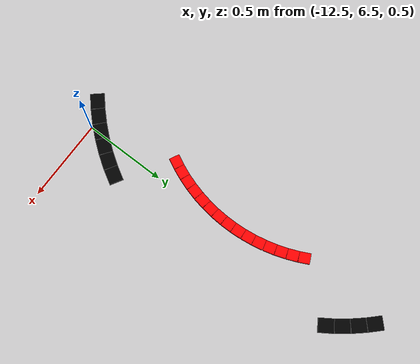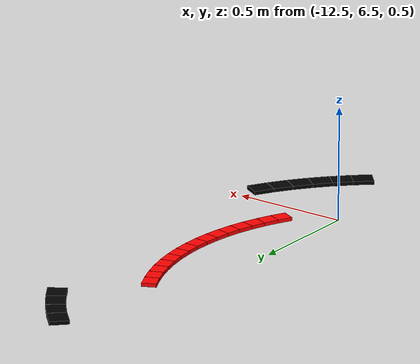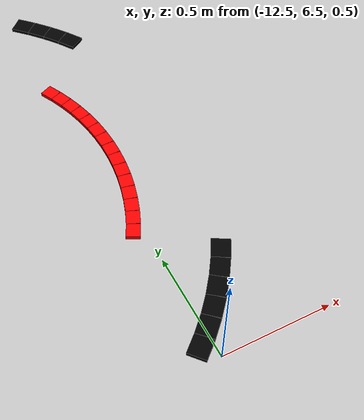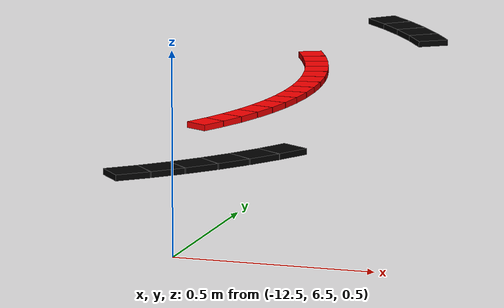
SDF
<sdf version="1.9">
 <world name="indoor_mission">
  <model name="start_vertiport_black_outer_ring_9">
   <static>true</static>
   <pose>-12.377516023391564 8.250019814576463 0.701 0 0 2.1598449493429825</pose>
   <link name="link">
    <visual name="visual">
     <geometry><box><size>0.08835729338221293 0.08 0.015</size></box></geometry>
     <material><ambient>0 0 0 1</ambient><diffuse>0 0 0 1</diffuse></material>
    </visual>
   </link>
  </model>
  <model name="start_vertiport_black_outer_ring_10">
   <static>true</static>
   <pose>-12.428972990606832 8.321827929161772 0.701 0 0 2.2252947962927703</pose>
   <link name="link">
    <visual name="visual">
     <geometry><box><size>0.08835729338221293 0.08 0.015</size></box></geometry>
     <material><ambient>0 0 0 1</ambient><diffuse>0 0 0 1</diffuse></material>
    </visual>
   </link>
  </model>
  <model name="start_vertiport_black_outer_ring_11">
   <static>true</static>
   <pose>-12.48501625990338 8.390116850385093 0.701 0 0 2.2907446432425576</pose>
   <link name="link">
    <visual name="visual">
     <geometry><box><size>0.08835729338221293 0.08 0.015</size></box></geometry>
     <material><ambient>0 0 0 1</ambient><diffuse>0 0 0 1</diffuse></material>
    </visual>
   </link>
  </model>
  <model name="start_vertiport_black_outer_ring_12">
   <static>true</static>
   <pose>-12.545405845398161 8.454594154601839 0.701 0 0 2.356194490192345</pose>
   <link name="link">
    <visual name="visual">
     <geometry><box><size>0.08835729338221293 0.08 0.015</size></box></geometry>
     <material><ambient>0 0 0 1</ambient><diffuse>0 0 0 1</diffuse></material>
    </visual>
   </link>
  </model>
  <model name="start_vertiport_black_outer_ring_83">
   <static>true</static>
   <pose>-12.609883149614907 6.48501625990338 0.701 0 0 7.003133623627247</pose>
   <link name="link">
    <visual name="visual">
     <geometry><box><size>0.08835729338221293 0.08 0.015</size></box></geometry>
     <material><ambient>0 0 0 1</ambient><diffuse>0 0 0 1</diffuse></material>
    </visual>
   </link>
  </model>
  <model name="start_vertiport_black_outer_ring_84">
   <static>true</static>
   <pose>-12.545405845398161 6.545405845398161 0.701 0 0 7.0685834705770345</pose>
   <link name="link">
    <visual name="visual">
     <geometry><box><size>0.08835729338221293 0.08 0.015</size></box></geometry>
     <material><ambient>0 0 0 1</ambient><diffuse>0 0 0 1</diffuse></material>
    </visual>
   </link>
  </model>
  <model name="start_vertiport_black_outer_ring_85">
   <static>true</static>
   <pose>-12.48501625990338 6.609883149614906 0.701 0 0 7.134033317526821</pose>
   <link name="link">
    <visual name="visual">
     <geometry><box><size>0.08835729338221293 0.08 0.015</size></box></geometry>
     <material><ambient>0 0 0 1</ambient><diffuse>0 0 0 1</diffuse></material>
    </visual>
   </link>
  </model>
  <model name="start_vertiport_black_outer_ring_86">
   <static>true</static>
   <pose>-12.428972990606832 6.678172070838227 0.701 0 0 7.199483164476609</pose>
   <link name="link">
    <visual name="visual">
     <geometry><box><size>0.08835729338221293 0.08 0.015</size></box></geometry>
     <material><ambient>0 0 0 1</ambient><diffuse>0 0 0 1</diffuse></material>
    </visual>
   </link>
  </model>
  <model name="start_vertiport_black_outer_ring_87">
   <static>true</static>
   <pose>-12.377516023391564 6.749980185423536 0.701 0 0 7.264933011426396</pose>
   <link name="link">
    <visual name="visual">
     <geometry><box><size>0.08835729338221293 0.08 0.015</size></box></geometry>
     <material><ambient>0 0 0 1</ambient><diffuse>0 0 0 1</diffuse></material>
    </visual>
   </link>
  </model>
  <model name="start_vertiport_black_outer_ring_88">
   <static>true</static>
   <pose>-12.330865704891009 6.824999999999999 0.701 0 0 7.330382858376184</pose>
   <link name="link">
    <visual name="visual">
     <geometry><box><size>0.08835729338221293 0.08 0.015</size></box></geometry>
     <material><ambient>0 0 0 1</ambient><diffuse>0 0 0 1</diffuse></material>
    </visual>
   </link>
  </model>
  <model name="start_vertiport_red_safety_ring_0">
   <static>true</static>
   <pose>-12.5 7.5 0.703 0 0 1.5707963267948966</pose>
   <link name="link">
    <visual name="visual">
     <geometry><box><size>0.06544984694978735 0.06 0.015</size></box></geometry>
     <material><ambient>1 0 0 1</ambient><diffuse>1 0 0 1</diffuse></material>
    </visual>
   </link>
  </model>
  <model name="start_vertiport_red_safety_ring_1">
   <static>true</static>
   <pose>-12.502141076761397 7.565403129230143 0.703 0 0 1.6362461737446838</pose>
   <link name="link">
    <visual name="visual">
     <geometry><box><size>0.06544984694978735 0.06 0.015</size></box></geometry>
     <material><ambient>1 0 0 1</ambient><diffuse>1 0 0 1</diffuse></material>
    </visual>
   </link>
  </model>
  <model name="start_vertiport_red_safety_ring_2">
   <static>true</static>
   <pose>-12.508555138626189 7.630526192220051 0.703 0 0 1.7016960206944713</pose>
   <link name="link">
    <visual name="visual">
     <geometry><box><size>0.06544984694978735 0.06 0.015</size></box></geometry>
     <material><ambient>1 0 0 1</ambient><diffuse>1 0 0 1</diffuse></material>
    </visual>
   </link>
  </model>
  <model name="start_vertiport_red_safety_ring_3">
   <static>true</static>
   <pose>-12.51921471959677 7.695090322016128 0.703 0 0 1.7671458676442586</pose>
   <link name="link">
    <visual name="visual">
     <geometry><box><size>0.06544984694978735 0.06 0.015</size></box></geometry>
     <material><ambient>1 0 0 1</ambient><diffuse>1 0 0 1</diffuse></material>
    </visual>
   </link>
  </model>
  <model name="start_vertiport_red_safety_ring_4">
   <static>true</static>
   <pose>-12.534074173710932 7.758819045102521 0.703 0 0 1.832595714594046</pose>
   <link name="link">
    <visual name="visual">
     <geometry><box><size>0.06544984694978735 0.06 0.015</size></box></geometry>
     <material><ambient>1 0 0 1</ambient><diffuse>1 0 0 1</diffuse></material>
    </visual>
   </link>
  </model>
  <model name="start_vertiport_red_safety_ring_5">
   <static>true</static>
   <pose>-12.553069870504894 7.821439465303161 0.703 0 0 1.8980455615438334</pose>
   <link name="link">
    <visual name="visual">
     <geometry><box><size>0.06544984694978735 0.06 0.015</size></box></geometry>
     <material><ambient>1 0 0 1</ambient><diffuse>1 0 0 1</diffuse></material>
    </visual>
   </link>
  </model>
  <model name="start_vertiport_red_safety_ring_6">
   <static>true</static>
   <pose>-12.576120467488714 7.88268343236509 0.703 0 0 1.9634954084936207</pose>
   <link name="link">
    <visual name="visual">
     <geometry><box><size>0.06544984694978735 0.06 0.015</size></box></geometry>
     <material><ambient>1 0 0 1</ambient><diffuse>1 0 0 1</diffuse></material>
    </visual>
   </link>
  </model>
  <model name="start_vertiport_red_safety_ring_7">
   <static>true</static>
   <pose>-12.603127258467312 7.9422886902190015 0.703 0 0 2.028945255443408</pose>
   <link name="link">
    <visual name="visual">
     <geometry><box><size>0.06544984694978735 0.06 0.015</size></box></geometry>
     <material><ambient>1 0 0 1</ambient><diffuse>1 0 0 1</diffuse></material>
    </visual>
   </link>
  </model>
  <model name="start_vertiport_red_safety_ring_89">
   <static>true</static>
   <pose>-12.603127258467312 7.057711309780998 0.703 0 0 7.3958327053259705</pose>
   <link name="link">
    <visual name="visual">
     <geometry><box><size>0.06544984694978735 0.06 0.015</size></box></geometry>
     <material><ambient>1 0 0 1</ambient><diffuse>1 0 0 1</diffuse></material>
    </visual>
   </link>
  </model>
  <model name="start_vertiport_red_safety_ring_90">
   <static>true</static>
   <pose>-12.576120467488714 7.1173165676349095 0.703 0 0 7.461282552275758</pose>
   <link name="link">
    <visual name="visual">
     <geometry><box><size>0.06544984694978735 0.06 0.015</size></box></geometry>
     <material><ambient>1 0 0 1</ambient><diffuse>1 0 0 1</diffuse></material>
    </visual>
   </link>
  </model>
  <model name="start_vertiport_red_safety_ring_91">
   <static>true</static>
   <pose>-12.553069870504894 7.178560534696838 0.703 0 0 7.526732399225546</pose>
   <link name="link">
    <visual name="visual">
     <geometry><box><size>0.06544984694978735 0.06 0.015</size></box></geometry>
     <material><ambient>1 0 0 1</ambient><diffuse>1 0 0 1</diffuse></material>
    </visual>
   </link>
  </model>
  <model name="start_vertiport_red_safety_ring_92">
   <static>true</static>
   <pose>-12.534074173710932 7.241180954897478 0.703 0 0 7.592182246175333</pose>
   <link name="link">
    <visual name="visual">
     <geometry><box><size>0.06544984694978735 0.06 0.015</size></box></geometry>
     <material><ambient>1 0 0 1</ambient><diffuse>1 0 0 1</diffuse></material>
    </visual>
   </link>
  </model>
  <model name="start_vertiport_red_safety_ring_93">
   <static>true</static>
   <pose>-12.51921471959677 7.304909677983871 0.703 0 0 7.6576320931251205</pose>
   <link name="link">
    <visual name="visual">
     <geometry><box><size>0.06544984694978735 0.06 0.015</size></box></geometry>
     <material><ambient>1 0 0 1</ambient><diffuse>1 0 0 1</diffuse></material>
    </visual>
   </link>
  </model>
  <model name="start_vertiport_red_safety_ring_94">
   <static>true</static>
   <pose>-12.508555138626189 7.369473807779947 0.703 0 0 7.723081940074907</pose>
   <link name="link">
    <visual name="visual">
     <geometry><box><size>0.06544984694978735 0.06 0.015</size></box></geometry>
     <material><ambient>1 0 0 1</ambient><diffuse>1 0 0 1</diffuse></material>
    </visual>
   </link>
  </model>
  <model name="start_vertiport_red_safety_ring_95">
   <static>true</static>
   <pose>-12.502141076761397 7.434596870769856 0.703 0 0 7.788531787024695</pose>
   <link name="link">
    <visual name="visual">
     <geometry><box><size>0.06544984694978735 0.06 0.015</size></box></geometry>
     <material><ambient>1 0 0 1</ambient><diffuse>1 0 0 1</diffuse></material>
    </visual>
   </link>
  </model>
 </world>
</sdf>
